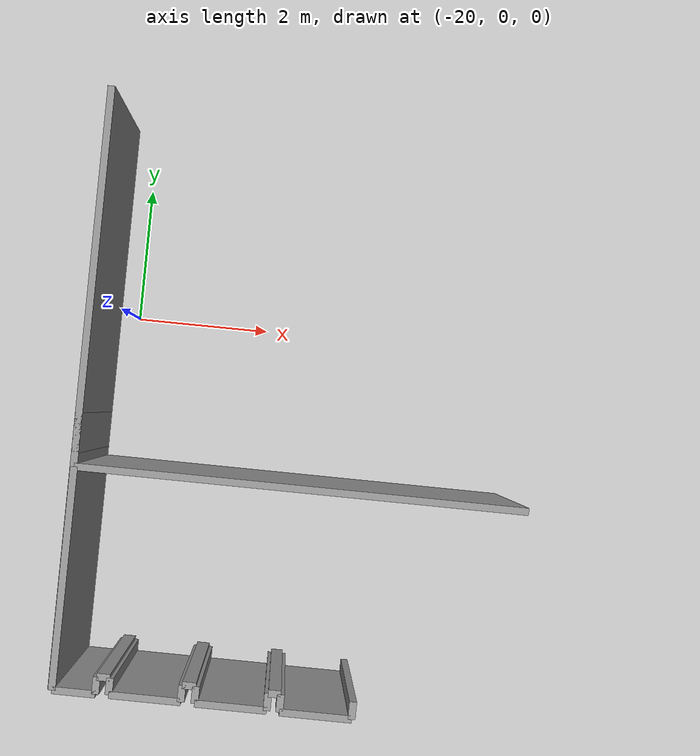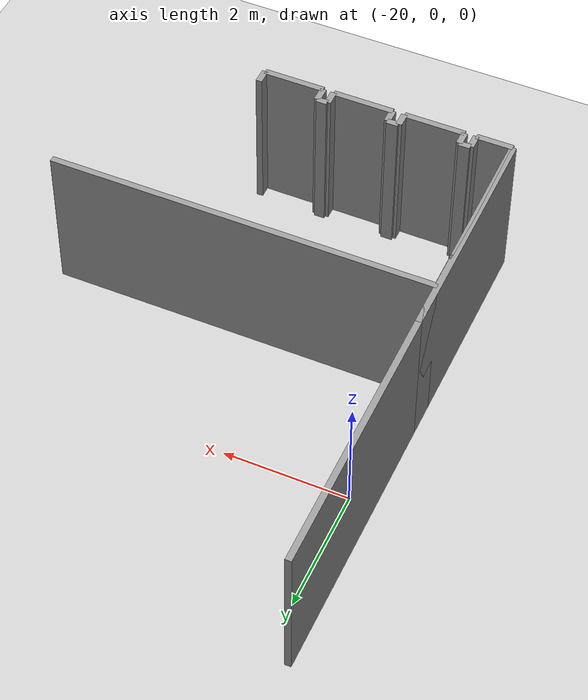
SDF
<sdf version="1.6">
 <world name="default">
  <model name="ground_plane">
   <static>1</static>
   <link name="link">
    <collision name="collision">
     <geometry><plane><normal>0 0 1</normal><size>100 100</size></plane></geometry>
     <surface><friction><ode><mu>100</mu><mu2>50</mu2></ode></friction></surface>
    </collision>
    <visual name="visual">
     <cast_shadows>0</cast_shadows>
     <geometry><plane><normal>0 0 1</normal><size>100 100</size></plane></geometry>
     <material>
      <script><uri>file://media/materials/scripts/gazebo.material</uri><name>Gazebo/Grey</name></script>
     </material>
    </visual>
   </link>
  </model>
  <model name="0510025536_Layout1_PLAN5">
   <static>1</static>
   <link name="Wall_0">
    <collision name="Wall_0_Collision">
     <geometry><box><size>0.544916191178 0.1 2.5</size></box></geometry>
     <pose>0.272458095589 0 1.25 0 0 0</pose>
    </collision>
    <visual name="Wall_0_Visual">
     <pose>0.272458095589 0 1.25 0 0 0</pose>
     <geometry><box><size>0.544916191178 0.1 2.5</size></box></geometry>
     <material>
      <script><uri>file://media/materials/scripts/gazebo.material</uri><name>Gazebo/Grey</name></script>
      <ambient>1 1 1 1</ambient>
     </material>
    </visual>
    <pose>0.0 -4.97008552439 0 0 0 1.57079632679</pose>
   </link>
   <link name="Wall_31">
    <collision name="Wall_31_Collision">
     <geometry><box><size>0.238527912976 0.1 2.5</size></box></geometry>
     <pose>0.119263956488 0 1.25 0 0 0</pose>
    </collision>
    <visual name="Wall_31_Visual">
     <pose>0.119263956488 0 1.25 0 0 0</pose>
     <geometry><box><size>0.238527912976 0.1 2.5</size></box></geometry>
     <material>
      <script><uri>file://media/materials/scripts/gazebo.material</uri><name>Gazebo/Grey</name></script>
      <ambient>1 1 1 1</ambient>
     </material>
    </visual>
    <pose>4.06489941671 -7.9392306617 0 0 0 -1.57079632679</pose>
   </link>
   <link name="Wall_32">
    <collision name="Wall_32_Collision">
     <geometry><box><size>0.978714211282 0.1 2.5</size></box></geometry>
     <pose>0.489357105641 0 1.25 0 0 0</pose>
    </collision>
    <visual name="Wall_32_Visual">
     <pose>0.489357105641 0 1.25 0 0 0</pose>
     <geometry><box><size>0.978714211282 0.1 2.5</size></box></geometry>
     <material>
      <script><uri>file://media/materials/scripts/gazebo.material</uri><name>Gazebo/Grey</name></script>
      <ambient>1 1 1 1</ambient>
     </material>
    </visual>
    <pose>4.06489941671 -8.17775857468 0 0 0 3.14159265359</pose>
   </link>
   <link name="Wall_33">
    <collision name="Wall_33_Collision">
     <geometry><box><size>0.240052865004 0.1 2.5</size></box></geometry>
     <pose>0.120026432502 0 1.25 0 0 0</pose>
    </collision>
    <visual name="Wall_33_Visual">
     <pose>0.120026432502 0 1.25 0 0 0</pose>
     <geometry><box><size>0.240052865004 0.1 2.5</size></box></geometry>
     <material>
      <script><uri>file://media/materials/scripts/gazebo.material</uri><name>Gazebo/Grey</name></script>
      <ambient>1 1 1 1</ambient>
     </material>
    </visual>
    <pose>3.08618520542 -8.17775857468 0 0 0 1.57079632679</pose>
   </link>
   <link name="Wall_34">
    <collision name="Wall_34_Collision">
     <geometry><box><size>0.171963756973 0.1 2.5</size></box></geometry>
     <pose>0.0859818784867 0 1.25 0 0 0</pose>
    </collision>
    <visual name="Wall_34_Visual">
     <pose>0.0859818784867 0 1.25 0 0 0</pose>
     <geometry><box><size>0.171963756973 0.1 2.5</size></box></geometry>
     <material>
      <script><uri>file://media/materials/scripts/gazebo.material</uri><name>Gazebo/Grey</name></script>
      <ambient>1 1 1 1</ambient>
     </material>
    </visual>
    <pose>3.08618520542 -7.93770570967 0 0 0 3.14159265359</pose>
   </link>
   <link name="Wall_35">
    <collision name="Wall_35_Collision">
     <geometry><box><size>0.234906151911 0.1 2.5</size></box></geometry>
     <pose>0.117453075955 0 1.25 0 0 0</pose>
    </collision>
    <visual name="Wall_35_Visual">
     <pose>0.117453075955 0 1.25 0 0 0</pose>
     <geometry><box><size>0.234906151911 0.1 2.5</size></box></geometry>
     <material>
      <script><uri>file://media/materials/scripts/gazebo.material</uri><name>Gazebo/Grey</name></script>
      <ambient>1 1 1 1</ambient>
     </material>
    </visual>
    <pose>2.91422144845 -7.93770570967 0 0 0 -1.57079632679</pose>
   </link>
   <link name="Wall_36">
    <collision name="Wall_36_Collision">
     <geometry><box><size>0.977665806763 0.1 2.5</size></box></geometry>
     <pose>0.488832903382 0 1.25 0 0 0</pose>
    </collision>
    <visual name="Wall_36_Visual">
     <pose>0.488832903382 0 1.25 0 0 0</pose>
     <geometry><box><size>0.977665806763 0.1 2.5</size></box></geometry>
     <material>
      <script><uri>file://media/materials/scripts/gazebo.material</uri><name>Gazebo/Grey</name></script>
      <ambient>1 1 1 1</ambient>
     </material>
    </visual>
    <pose>2.91422144845 -8.17261186159 0 0 0 3.14159265359</pose>
   </link>
   <link name="Wall_37">
    <collision name="Wall_37_Collision">
     <geometry><box><size>0.229378200811 0.1 2.5</size></box></geometry>
     <pose>0.114689100405 0 1.25 0 0 0</pose>
    </collision>
    <visual name="Wall_37_Visual">
     <pose>0.114689100405 0 1.25 0 0 0</pose>
     <geometry><box><size>0.229378200811 0.1 2.5</size></box></geometry>
     <material>
      <script><uri>file://media/materials/scripts/gazebo.material</uri><name>Gazebo/Grey</name></script>
      <ambient>1 1 1 1</ambient>
     </material>
    </visual>
    <pose>1.93655564169 -8.17261186159 0 0 0 1.57079632679</pose>
   </link>
   <link name="Wall_38">
    <collision name="Wall_38_Collision">
     <geometry><box><size>0.186901932877 0.1 2.5</size></box></geometry>
     <pose>0.0934509664383 0 1.25 0 0 0</pose>
    </collision>
    <visual name="Wall_38_Visual">
     <pose>0.0934509664383 0 1.25 0 0 0</pose>
     <geometry><box><size>0.186901932877 0.1 2.5</size></box></geometry>
     <material>
      <script><uri>file://media/materials/scripts/gazebo.material</uri><name>Gazebo/Grey</name></script>
      <ambient>1 1 1 1</ambient>
     </material>
    </visual>
    <pose>1.93655564169 -7.94323366077 0 0 0 3.14159265359</pose>
   </link>
   <link name="Wall_39">
    <collision name="Wall_39_Collision">
     <geometry><box><size>0.229314661143 0.1 2.5</size></box></geometry>
     <pose>0.114657330571 0 1.25 0 0 0</pose>
    </collision>
    <visual name="Wall_39_Visual">
     <pose>0.114657330571 0 1.25 0 0 0</pose>
     <geometry><box><size>0.229314661143 0.1 2.5</size></box></geometry>
     <material>
      <script><uri>file://media/materials/scripts/gazebo.material</uri><name>Gazebo/Grey</name></script>
      <ambient>1 1 1 1</ambient>
     </material>
    </visual>
    <pose>1.74965370881 -7.94323366077 0 0 0 -1.57079632679</pose>
   </link>
   <link name="Wall_40">
    <collision name="Wall_40_Collision">
     <geometry><box><size>0.976833437115 0.1 2.5</size></box></geometry>
     <pose>0.488416718557 0 1.25 0 0 0</pose>
    </collision>
    <visual name="Wall_40_Visual">
     <pose>0.488416718557 0 1.25 0 0 0</pose>
     <geometry><box><size>0.976833437115 0.1 2.5</size></box></geometry>
     <material>
      <script><uri>file://media/materials/scripts/gazebo.material</uri><name>Gazebo/Grey</name></script>
      <ambient>1 1 1 1</ambient>
     </material>
    </visual>
    <pose>1.74965370881 -8.17254832192 0 0 0 3.14159265359</pose>
   </link>
   <link name="Wall_41">
    <collision name="Wall_41_Collision">
     <geometry><box><size>0.227090772769 0.1 2.5</size></box></geometry>
     <pose>0.113545386385 0 1.25 0 0 0</pose>
    </collision>
    <visual name="Wall_41_Visual">
     <pose>0.113545386385 0 1.25 0 0 0</pose>
     <geometry><box><size>0.227090772769 0.1 2.5</size></box></geometry>
     <material>
      <script><uri>file://media/materials/scripts/gazebo.material</uri><name>Gazebo/Grey</name></script>
      <ambient>1 1 1 1</ambient>
     </material>
    </visual>
    <pose>0.772820271696 -8.17254832192 0 0 0 1.57079632679</pose>
   </link>
   <link name="Wall_42">
    <collision name="Wall_42_Collision">
     <geometry><box><size>0.180624213697 0.1 2.5</size></box></geometry>
     <pose>0.0903121068483 0 1.25 0 0 0</pose>
    </collision>
    <visual name="Wall_42_Visual">
     <pose>0.0903121068483 0 1.25 0 0 0</pose>
     <geometry><box><size>0.180624213697 0.1 2.5</size></box></geometry>
     <material>
      <script><uri>file://media/materials/scripts/gazebo.material</uri><name>Gazebo/Grey</name></script>
      <ambient>1 1 1 1</ambient>
     </material>
    </visual>
    <pose>0.772820271696 -7.94545754915 0 0 0 3.14159265359</pose>
   </link>
   <link name="Wall_43">
    <collision name="Wall_43_Collision">
     <geometry><box><size>0.23840083364 0.1 2.5</size></box></geometry>
     <pose>0.11920041682 0 1.25 0 0 0</pose>
    </collision>
    <visual name="Wall_43_Visual">
     <pose>0.11920041682 0 1.25 0 0 0</pose>
     <geometry><box><size>0.23840083364 0.1 2.5</size></box></geometry>
     <material>
      <script><uri>file://media/materials/scripts/gazebo.material</uri><name>Gazebo/Grey</name></script>
      <ambient>1 1 1 1</ambient>
     </material>
    </visual>
    <pose>0.592196057999 -7.94545754915 0 0 0 -1.57079632679</pose>
   </link>
   <link name="Wall_44">
    <collision name="Wall_44_Collision">
     <geometry><box><size>0.587011221105 0.1 2.5</size></box></geometry>
     <pose>0.293505610553 0 1.25 0 0 0</pose>
    </collision>
    <visual name="Wall_44_Visual">
     <pose>0.293505610553 0 1.25 0 0 0</pose>
     <geometry><box><size>0.587011221105 0.1 2.5</size></box></geometry>
     <material>
      <script><uri>file://media/materials/scripts/gazebo.material</uri><name>Gazebo/Grey</name></script>
      <ambient>1 1 1 1</ambient>
     </material>
    </visual>
    <pose>0.592196057999 -8.18385838279 0 0 0 3.14159265359</pose>
   </link>
   <link name="Wall_45">
    <collision name="Wall_45_Collision">
     <geometry><box><size>3.02772871103 0.1 2.5</size></box></geometry>
     <pose>1.51386435552 0 1.25 0 0 0</pose>
    </collision>
    <visual name="Wall_45_Visual">
     <pose>1.51386435552 0 1.25 0 0 0</pose>
     <geometry><box><size>3.02772871103 0.1 2.5</size></box></geometry>
     <material>
      <script><uri>file://media/materials/scripts/gazebo.material</uri><name>Gazebo/Grey</name></script>
      <ambient>1 1 1 1</ambient>
     </material>
    </visual>
    <pose>0.00518483689367 -8.18385838279 0 0 0 1.57079632679</pose>
   </link>
   <link name="Wall_46">
    <collision name="Wall_46_Collision">
     <geometry><box><size>6.15874750607 0.1 2.5</size></box></geometry>
     <pose>3.07937375303 0 1.25 0 0 0</pose>
    </collision>
    <visual name="Wall_46_Visual">
     <pose>3.07937375303 0 1.25 0 0 0</pose>
     <geometry><box><size>6.15874750607 0.1 2.5</size></box></geometry>
     <material>
      <script><uri>file://media/materials/scripts/gazebo.material</uri><name>Gazebo/Grey</name></script>
      <ambient>1 1 1 1</ambient>
     </material>
    </visual>
    <pose>0.00518483689367 -5.15612967175 0 0 0 0.0</pose>
   </link>
   <link name="Wall_213">
    <collision name="Wall_213_Collision">
     <geometry><box><size>8.18385838279 0.1 2.5</size></box></geometry>
     <pose>4.09192919139 0 1.25 0 0 0</pose>
    </collision>
    <visual name="Wall_213_Visual">
     <pose>4.09192919139 0 1.25 0 0 0</pose>
     <geometry><box><size>8.18385838279 0.1 2.5</size></box></geometry>
     <material>
      <script><uri>file://media/materials/scripts/gazebo.material</uri><name>Gazebo/Grey</name></script>
      <ambient>1 1 1 1</ambient>
     </material>
    </visual>
    <pose>0.0 -8.18385838279 0 0 0 1.57079632679</pose>
   </link>
   <pose>-20.35 2.93385838279 0 0 0 0</pose>
  </model>
 </world>
</sdf>
